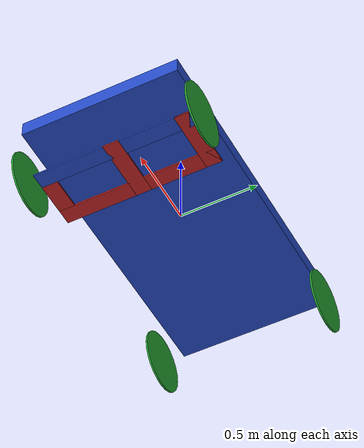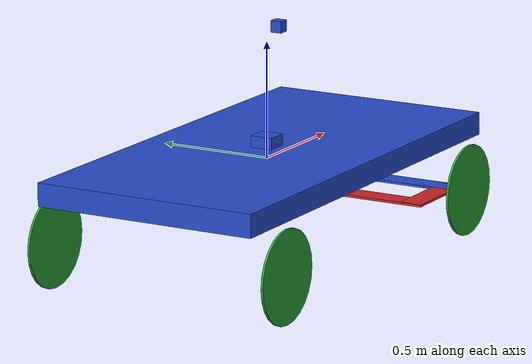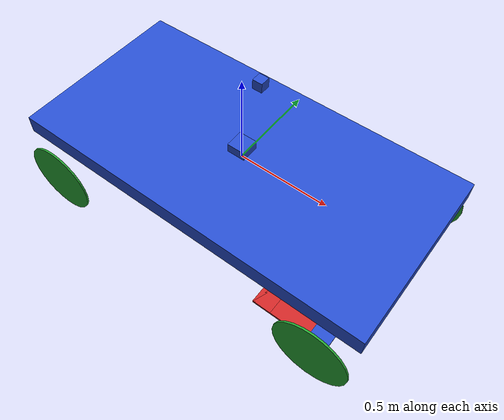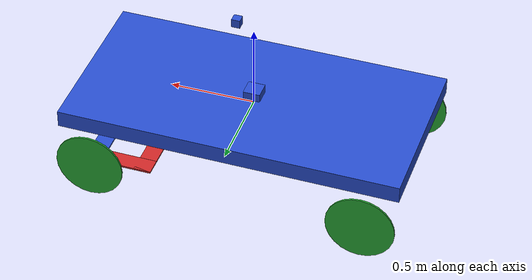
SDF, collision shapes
<sdf version='1.7'>
  <model name='Pedro'>
    <link name='base_link'>
      <inertial>
        <pose>0.015686 0 -0.004902 0 -0 0</pose>
        <mass>51</mass>
        <inertia>
          <ixx>2.06128</ixx>
          <ixy>0</ixy>
          <ixz>0.196078</ixz>
          <iyy>2.68873</iyy>
          <iyz>0</iyz>
          <izz>2.62745</izz>
        </inertia>
      </inertial>
      <collision name='base_link_collision'>
        <pose>0 0 0 0 -0 0</pose>
        <geometry>
          <box>
            <size>2 1 0.1</size>
          </box>
        </geometry>
        <surface>
          <contact>
            <ode/>
          </contact>
          <friction>
            <ode/>
          </friction>
        </surface>
      </collision>
      <collision name='base_link_fixed_joint_lump__camera_link_collision_1'>
        <pose>0.1 0 0.55 0 -0 0</pose>
        <geometry>
          <box>
            <size>0.05 0.05 0.05</size>
          </box>
        </geometry>
        <surface>
          <contact>
            <ode/>
          </contact>
          <friction>
            <ode/>
          </friction>
        </surface>
      </collision>
      <collision name='base_link_fixed_joint_lump__front_link_collision_2'>
        <pose>0.8 0 -0.25 0 -0 0</pose>
        <geometry>
          <box>
            <size>0.1 1 0.01</size>
          </box>
        </geometry>
        <surface>
          <contact>
            <ode/>
          </contact>
          <friction>
            <ode/>
          </friction>
        </surface>
      </collision>
      <collision name='base_link_fixed_joint_lump__hokuyo_link_collision_3'>
        <pose>0 0 0.05 0 -0 0</pose>
        <geometry>
          <box>
            <size>0.1 0.1 0.1</size>
          </box>
        </geometry>
        <surface>
          <contact>
            <ode/>
          </contact>
          <friction>
            <ode/>
          </friction>
        </surface>
      </collision>
      <visual name='base_link_visual'>
        <pose>0 0 0 0 -0 0</pose>
        <geometry>
          <box>
            <size>2 1 0.1</size>
          </box>
        </geometry>
        <material>
          <script>
            <name>Gazebo/Blue</name>
            <uri>file://media/materials/scripts/gazebo.material</uri>
          </script>
        </material>
      </visual>
      <visual name='base_link_fixed_joint_lump__camera_link_visual_1'>
        <pose>0.1 0 0.05 0 -0 0</pose>
        <geometry>
          <box>
            <size>0.05 0.05 0.05</size>
          </box>
        </geometry>
        <material>
          <script>
            <name>Gazebo/Red</name>
            <uri>file://media/materials/scripts/gazebo.material</uri>
          </script>
        </material>
      </visual>
      <visual name='base_link_fixed_joint_lump__front_link_visual_2'>
        <pose>0.8 0 -0.25 0 -0 0</pose>
        <geometry>
          <box>
            <size>0.1 1 0.01</size>
          </box>
        </geometry>
        <material>
          <script>
            <name>Gazebo/Red</name>
            <uri>file://media/materials/scripts/gazebo.material</uri>
          </script>
        </material>
      </visual>
      <visual name='base_link_fixed_joint_lump__hokuyo_link_visual_3'>
        <pose>0 0 0.05 0 -0 0</pose>
        <geometry>
          <mesh>
            <scale>1 1 1</scale>
            <uri>hokuyo.dae</uri>
          </mesh>
        </geometry>
        <material>
          <script>
            <name>Gazebo/Black</name>
            <uri>file://media/materials/scripts/gazebo.material</uri>
          </script>
        </material>
      </visual>
      <sensor name='camera' type='depth'>
        <visualize>1</visualize>
        <update_rate>10</update_rate>
        <camera>
          <horizontal_fov>1.089</horizontal_fov>
          <image>
            <format>B8G8R8</format>
            <width>640</width>
            <height>480</height>
          </image>
          <clip>
            <near>0.05</near>
            <far>8</far>
          </clip>
        </camera>
        <plugin name='camera_controller' filename='libgazebo_ros_camera.so'>
          <frame_name>camera_link_optical</frame_name>
          <min_depth>0.1</min_depth>
          <max_depth>100.0</max_depth>
        </plugin>
        <pose>0.1 0 0.05 0 -0 0</pose>
      </sensor>
      <sensor name='laser' type='gpu_ray'>
        <visualize>1</visualize>
        <update_rate>10</update_rate>
        <ray>
          <scan>
            <horizontal>
              <samples>360</samples>
              <resolution>1</resolution>
              <min_angle>-3.14</min_angle>
              <max_angle>3.14</max_angle>
            </horizontal>
          </scan>
          <range>
            <min>0.3</min>
            <max>12</max>
          </range>
        </ray>
        <always_on>1</always_on>
        <plugin name='laser_controller' filename='libgazebo_ros_ray_sensor.so'>
          <ros>
            <argument>~/out:=scan</argument>
          </ros>
          <output_type>sensor_msgs/LaserScan</output_type>
          <frame_name>laser_frame</frame_name>
        </plugin>
        <plugin name='pc2_gpu' filename='libgazebo_ros_ray_sensor.so'>
          <ros>
            <namespace>/gpu_ray</namespace>
            <remapping>~/out:=pointcloud2</remapping>
          </ros>
          <output_type>sensor_msgs/PointCloud2</output_type>
        </plugin>
        <plugin name='pc_gpu' filename='libgazebo_ros_ray_sensor.so'>
          <ros>
            <namespace>/gpu_ray</namespace>
            <remapping>~/out:=pointcloud</remapping>
          </ros>
          <output_type>sensor_msgs/PointCloud</output_type>
        </plugin>
        <plugin name='laserscan_gpu' filename='libgazebo_ros_ray_sensor.so'>
          <ros>
            <namespace>/gpu_ray</namespace>
            <remapping>~/out:=laserscan</remapping>
          </ros>
          <output_type>sensor_msgs/LaserScan</output_type>
        </plugin>
        <plugin name='range_gpu' filename='libgazebo_ros_ray_sensor.so'>
          <ros>
            <namespace>/gpu_ray</namespace>
            <remapping>~/out:=range</remapping>
          </ros>
          <output_type>sensor_msgs/Range</output_type>
        </plugin>
        <pose>0 0 0 0 -0 0</pose>
      </sensor>
    </link>
    <joint name='back_left_wheel_joint' type='revolute'>
      <pose relative_to='base_link'>-0.8 0.55 -0.25 0 -0 0</pose>
      <parent>base_link</parent>
      <child>back_left_wheel_link</child>
      <axis>
        <xyz>0 1 0</xyz>
        <limit>
          <lower>-1e+16</lower>
          <upper>1e+16</upper>
        </limit>
        <dynamics>
          <spring_reference>0</spring_reference>
          <spring_stiffness>0</spring_stiffness>
        </dynamics>
      </axis>
    </joint>
    <link name='back_left_wheel_link'>
      <pose relative_to='back_left_wheel_joint'>0 0 0 0 -0 0</pose>
      <inertial>
        <pose>0 0 0 0 -0 0</pose>
        <mass>1</mass>
        <inertia>
          <ixx>1</ixx>
          <ixy>0</ixy>
          <ixz>0</ixz>
          <iyy>1</iyy>
          <iyz>0</iyz>
          <izz>1</izz>
        </inertia>
      </inertial>
      <collision name='back_left_wheel_link_collision'>
        <pose>0 0 0 1.5708 -0 0</pose>
        <geometry>
          <cylinder>
            <length>0.01</length>
            <radius>0.2</radius>
          </cylinder>
        </geometry>
        <surface>
          <contact>
            <ode/>
          </contact>
          <friction>
            <ode/>
          </friction>
        </surface>
      </collision>
      <visual name='back_left_wheel_link_visual'>
        <pose>0 0 0 1.5708 -0 0</pose>
        <geometry>
          <cylinder>
            <length>0.01</length>
            <radius>0.2</radius>
          </cylinder>
        </geometry>
        <material>
          <script>
            <name>Gazebo/Green</name>
            <uri>file://media/materials/scripts/gazebo.material</uri>
          </script>
        </material>
      </visual>
    </link>
    <joint name='back_right_wheel_joint' type='revolute'>
      <pose relative_to='base_link'>-0.8 -0.55 -0.25 0 -0 0</pose>
      <parent>base_link</parent>
      <child>back_right_wheel_link</child>
      <axis>
        <xyz>0 1 0</xyz>
        <limit>
          <lower>-1e+16</lower>
          <upper>1e+16</upper>
        </limit>
        <dynamics>
          <spring_reference>0</spring_reference>
          <spring_stiffness>0</spring_stiffness>
        </dynamics>
      </axis>
    </joint>
    <link name='back_right_wheel_link'>
      <pose relative_to='back_right_wheel_joint'>0 0 0 0 -0 0</pose>
      <inertial>
        <pose>0 0 0 0 -0 0</pose>
        <mass>1</mass>
        <inertia>
          <ixx>1</ixx>
          <ixy>0</ixy>
          <ixz>0</ixz>
          <iyy>1</iyy>
          <iyz>0</iyz>
          <izz>1</izz>
        </inertia>
      </inertial>
      <collision name='back_right_wheel_link_collision'>
        <pose>0 0 0 1.5708 -0 0</pose>
        <geometry>
          <cylinder>
            <length>0.01</length>
            <radius>0.2</radius>
          </cylinder>
        </geometry>
        <surface>
          <contact>
            <ode/>
          </contact>
          <friction>
            <ode/>
          </friction>
        </surface>
      </collision>
      <visual name='back_right_wheel_link_visual'>
        <pose>0 0 0 1.5708 -0 0</pose>
        <geometry>
          <cylinder>
            <length>0.01</length>
            <radius>0.2</radius>
          </cylinder>
        </geometry>
        <material>
          <script>
            <name>Gazebo/Green</name>
            <uri>file://media/materials/scripts/gazebo.material</uri>
          </script>
        </material>
      </visual>
    </link>
    <joint name='front_left_bar_joint' type='revolute'>
      <pose relative_to='base_link'>0.8 0.45 -0.25 0 -0 0</pose>
      <parent>base_link</parent>
      <child>front_left_bar_link</child>
      <axis>
        <xyz>0 0 1</xyz>
        <limit>
          <lower>-0.5</lower>
          <upper>0.5</upper>
          <effort>100</effort>
          <velocity>10</velocity>
        </limit>
        <dynamics>
          <spring_reference>0</spring_reference>
          <spring_stiffness>0</spring_stiffness>
        </dynamics>
      </axis>
    </joint>
    <link name='front_left_bar_link'>
      <pose relative_to='front_left_bar_joint'>0 0 0 0 -0 0</pose>
      <inertial>
        <pose>0 0 0 0 -0 0</pose>
        <mass>1</mass>
        <inertia>
          <ixx>1</ixx>
          <ixy>0</ixy>
          <ixz>0</ixz>
          <iyy>1</iyy>
          <iyz>0</iyz>
          <izz>1</izz>
        </inertia>
      </inertial>
      <collision name='front_left_bar_link_collision'>
        <pose>-0.15 0 0 0 -0 0</pose>
        <geometry>
          <box>
            <size>0.4 0.1 0.01</size>
          </box>
        </geometry>
        <surface>
          <contact>
            <ode/>
          </contact>
          <friction>
            <ode/>
          </friction>
        </surface>
      </collision>
      <visual name='front_left_bar_link_visual'>
        <pose>-0.15 0 0 0 -0 0</pose>
        <geometry>
          <box>
            <size>0.4 0.1 0.01</size>
          </box>
        </geometry>
        <material>
          <script>
            <name>Gazebo/Red</name>
            <uri>file://media/materials/scripts/gazebo.material</uri>
          </script>
        </material>
      </visual>
    </link>
    <joint name='front_left_wheel_joint' type='revolute'>
      <pose relative_to='front_left_bar_link'>0 0.1 0 0 -0 0</pose>
      <parent>front_left_bar_link</parent>
      <child>front_left_wheel_link</child>
      <axis>
        <xyz>0 1 0</xyz>
        <limit>
          <lower>-1e+16</lower>
          <upper>1e+16</upper>
        </limit>
        <dynamics>
          <spring_reference>0</spring_reference>
          <spring_stiffness>0</spring_stiffness>
        </dynamics>
      </axis>
    </joint>
    <link name='front_left_wheel_link'>
      <pose relative_to='front_left_wheel_joint'>0 0 0 0 -0 0</pose>
      <inertial>
        <pose>0 0 0 0 -0 0</pose>
        <mass>1</mass>
        <inertia>
          <ixx>1</ixx>
          <ixy>0</ixy>
          <ixz>0</ixz>
          <iyy>1</iyy>
          <iyz>0</iyz>
          <izz>1</izz>
        </inertia>
      </inertial>
      <collision name='front_left_wheel_link_collision'>
        <pose>0 0 0 1.5708 -0 0</pose>
        <geometry>
          <cylinder>
            <length>0.01</length>
            <radius>0.2</radius>
          </cylinder>
        </geometry>
        <surface>
          <contact>
            <ode/>
          </contact>
          <friction>
            <ode/>
          </friction>
        </surface>
      </collision>
      <visual name='front_left_wheel_link_visual'>
        <pose>0 0 0 1.5708 -0 0</pose>
        <geometry>
          <cylinder>
            <length>0.01</length>
            <radius>0.2</radius>
          </cylinder>
        </geometry>
        <material>
          <script>
            <name>Gazebo/Green</name>
            <uri>file://media/materials/scripts/gazebo.material</uri>
          </script>
        </material>
      </visual>
    </link>
    <joint name='front_right_bar_joint' type='revolute'>
      <pose relative_to='base_link'>0.8 -0.45 -0.25 0 -0 0</pose>
      <parent>base_link</parent>
      <child>front_right_bar_link</child>
      <axis>
        <xyz>0 0 1</xyz>
        <limit>
          <lower>-0.5</lower>
          <upper>0.5</upper>
          <effort>100</effort>
          <velocity>10</velocity>
        </limit>
        <dynamics>
          <spring_reference>0</spring_reference>
          <spring_stiffness>0</spring_stiffness>
        </dynamics>
      </axis>
    </joint>
    <link name='front_right_bar_link'>
      <pose relative_to='front_right_bar_joint'>0 0 0 0 -0 0</pose>
      <inertial>
        <pose>0 0 0 0 -0 0</pose>
        <mass>1</mass>
        <inertia>
          <ixx>1</ixx>
          <ixy>0</ixy>
          <ixz>0</ixz>
          <iyy>1</iyy>
          <iyz>0</iyz>
          <izz>1</izz>
        </inertia>
      </inertial>
      <collision name='front_right_bar_link_collision'>
        <pose>-0.15 0 0 0 -0 0</pose>
        <geometry>
          <box>
            <size>0.4 0.1 0.01</size>
          </box>
        </geometry>
        <surface>
          <contact>
            <ode/>
          </contact>
          <friction>
            <ode/>
          </friction>
        </surface>
      </collision>
      <visual name='front_right_bar_link_visual'>
        <pose>-0.15 0 0 0 -0 0</pose>
        <geometry>
          <box>
            <size>0.4 0.1 0.01</size>
          </box>
        </geometry>
        <material>
          <script>
            <name>Gazebo/Red</name>
            <uri>file://media/materials/scripts/gazebo.material</uri>
          </script>
        </material>
      </visual>
    </link>
    <joint name='front_right_wheel_joint' type='revolute'>
      <pose relative_to='front_right_bar_link'>0 -0.1 0 0 -0 0</pose>
      <parent>front_right_bar_link</parent>
      <child>front_right_wheel_link</child>
      <axis>
        <xyz>0 1 0</xyz>
        <limit>
          <lower>-1e+16</lower>
          <upper>1e+16</upper>
        </limit>
        <dynamics>
          <spring_reference>0</spring_reference>
          <spring_stiffness>0</spring_stiffness>
        </dynamics>
      </axis>
    </joint>
    <link name='front_right_wheel_link'>
      <pose relative_to='front_right_wheel_joint'>0 0 0 0 -0 0</pose>
      <inertial>
        <pose>0 0 0 0 -0 0</pose>
        <mass>1</mass>
        <inertia>
          <ixx>1</ixx>
          <ixy>0</ixy>
          <ixz>0</ixz>
          <iyy>1</iyy>
          <iyz>0</iyz>
          <izz>1</izz>
        </inertia>
      </inertial>
      <collision name='front_right_wheel_link_collision'>
        <pose>0 0 0 1.5708 -0 0</pose>
        <geometry>
          <cylinder>
            <length>0.01</length>
            <radius>0.2</radius>
          </cylinder>
        </geometry>
        <surface>
          <contact>
            <ode/>
          </contact>
          <friction>
            <ode/>
          </friction>
        </surface>
      </collision>
      <visual name='front_right_wheel_link_visual'>
        <pose>0 0 0 1.5708 -0 0</pose>
        <geometry>
          <cylinder>
            <length>0.01</length>
            <radius>0.2</radius>
          </cylinder>
        </geometry>
        <material>
          <script>
            <name>Gazebo/Green</name>
            <uri>file://media/materials/scripts/gazebo.material</uri>
          </script>
        </material>
      </visual>
      <gravity>1</gravity>
    </link>
    <joint name='steer_joint' type='revolute'>
      <pose relative_to='base_link'>0.8 0 -0.25 0 -0 0</pose>
      <parent>base_link</parent>
      <child>steer_link</child>
      <axis>
        <xyz>0 0 1</xyz>
        <limit>
          <lower>-0.5</lower>
          <upper>0.5</upper>
          <effort>100</effort>
          <velocity>10</velocity>
        </limit>
        <dynamics>
          <spring_reference>0</spring_reference>
          <spring_stiffness>0</spring_stiffness>
        </dynamics>
      </axis>
    </joint>
    <link name='steer_link'>
      <pose relative_to='steer_joint'>0 0 0 0 -0 0</pose>
      <inertial>
        <pose>0 0 0 0 -0 0</pose>
        <mass>1</mass>
        <inertia>
          <ixx>1</ixx>
          <ixy>0</ixy>
          <ixz>0</ixz>
          <iyy>1</iyy>
          <iyz>0</iyz>
          <izz>1</izz>
        </inertia>
      </inertial>
      <collision name='steer_link_collision'>
        <pose>-0.15 0 0 0 -0 0</pose>
        <geometry>
          <box>
            <size>0.4 0.1 0.01</size>
          </box>
        </geometry>
        <surface>
          <contact>
            <ode/>
          </contact>
          <friction>
            <ode/>
          </friction>
        </surface>
      </collision>
      <visual name='steer_link_visual'>
        <pose>-0.15 0 0 0 -0 0</pose>
        <geometry>
          <box>
            <size>0.4 0.1 0.01</size>
          </box>
        </geometry>
        <material>
          <script>
            <name>Gazebo/Red</name>
            <uri>file://media/materials/scripts/gazebo.material</uri>
          </script>
        </material>
      </visual>
    </link>
    <joint name='ackermann_joint' type='revolute'>
      <pose relative_to='steer_link'>-0.3 0 0 0 -0 0</pose>
      <parent>steer_link</parent>
      <child>ackermann_bar_link</child>
      <axis>
        <xyz>0 0 1</xyz>
        <limit>
          <lower>-0.5</lower>
          <upper>0.5</upper>
          <effort>100</effort>
          <velocity>10</velocity>
        </limit>
        <dynamics>
          <spring_reference>0</spring_reference>
          <spring_stiffness>0</spring_stiffness>
        </dynamics>
      </axis>
    </joint>
    <link name='ackermann_bar_link'>
      <pose relative_to='ackermann_joint'>0 0 0 0 -0 0</pose>
      <inertial>
        <pose>0 0 0 0 -0 0</pose>
        <mass>1</mass>
        <inertia>
          <ixx>1</ixx>
          <ixy>0</ixy>
          <ixz>0</ixz>
          <iyy>1</iyy>
          <iyz>0</iyz>
          <izz>1</izz>
        </inertia>
      </inertial>
      <collision name='ackermann_bar_link_collision'>
        <pose>0 0 0 0 -0 0</pose>
        <geometry>
          <box>
            <size>0.1 1 0.01</size>
          </box>
        </geometry>
        <surface>
          <contact>
            <ode/>
          </contact>
          <friction>
            <ode/>
          </friction>
        </surface>
      </collision>
      <visual name='ackermann_bar_link_visual'>
        <pose>0 0 0 0 -0 0</pose>
        <geometry>
          <box>
            <size>0.1 1 0.01</size>
          </box>
        </geometry>
        <material>
          <script>
            <name>Gazebo/Red</name>
            <uri>file://media/materials/scripts/gazebo.material</uri>
          </script>
        </material>
      </visual>
    </link>
    <joint name='front_left_bar_joint' type='revolute'>
      <pose relative_to='base_link'>0.8 0.45 -0.25 0 -0 0</pose>
      <parent>base_link</parent>
      <child>front_left_bar_link</child>
      <axis>
        <xyz>0 0 1</xyz>
        <limit>
          <lower>-0.5</lower>
          <upper>0.5</upper>
          <effort>100</effort>
          <velocity>10</velocity>
        </limit>
        <dynamics>
          <spring_reference>0</spring_reference>
          <spring_stiffness>0</spring_stiffness>
        </dynamics>
      </axis>
    </joint>
    <link name='front_left_bar_link'>
      <pose relative_to='front_left_bar_joint'>0 0 0 0 -0 0</pose>
      <inertial>
        <pose>0 0 0 0 -0 0</pose>
        <mass>1</mass>
        <inertia>
          <ixx>1</ixx>
          <ixy>0</ixy>
          <ixz>0</ixz>
          <iyy>1</iyy>
          <iyz>0</iyz>
          <izz>1</izz>
        </inertia>
      </inertial>
      <collision name='front_left_bar_link_collision'>
        <pose>-0.15 0 0 0 -0 0</pose>
        <geometry>
          <box>
            <size>0.4 0.1 0.01</size>
          </box>
        </geometry>
        <surface>
          <contact>
            <ode/>
          </contact>
          <friction>
            <ode/>
          </friction>
        </surface>
      </collision>
      <visual name='front_left_bar_link_visual'>
        <pose>-0.15 0 0 0 -0 0</pose>
        <geometry>
          <box>
            <size>0.4 0.1 0.01</size>
          </box>
        </geometry>
        <material>
          <script>
            <name>Gazebo/Red</name>
            <uri>file://media/materials/scripts/gazebo.material</uri>
          </script>
        </material>
      </visual>
    </link>
    <joint name='front_left_wheel_joint' type='revolute'>
      <pose relative_to='front_left_bar_link'>0 0.1 0 0 -0 0</pose>
      <parent>front_left_bar_link</parent>
      <child>front_left_wheel_link</child>
      <axis>
        <xyz>0 1 0</xyz>
        <limit>
          <lower>-1e+16</lower>
          <upper>1e+16</upper>
        </limit>
        <dynamics>
          <spring_reference>0</spring_reference>
          <spring_stiffness>0</spring_stiffness>
        </dynamics>
      </axis>
    </joint>
    <link name='front_left_wheel_link'>
      <pose relative_to='front_left_wheel_joint'>0 0 0 0 -0 0</pose>
      <inertial>
        <pose>0 0 0 0 -0 0</pose>
        <mass>1</mass>
        <inertia>
          <ixx>1</ixx>
          <ixy>0</ixy>
          <ixz>0</ixz>
          <iyy>1</iyy>
          <iyz>0</iyz>
          <izz>1</izz>
        </inertia>
      </inertial>
      <collision name='front_left_wheel_link_collision'>
        <pose>0 0 0 1.5708 -0 0</pose>
        <geometry>
          <cylinder>
            <length>0.01</length>
            <radius>0.2</radius>
          </cylinder>
        </geometry>
        <surface>
          <contact>
            <ode/>
          </contact>
          <friction>
            <ode/>
          </friction>
        </surface>
      </collision>
      <visual name='front_left_wheel_link_visual'>
        <pose>0 0 0 1.5708 -0 0</pose>
        <geometry>
          <cylinder>
            <length>0.01</length>
            <radius>0.2</radius>
          </cylinder>
        </geometry>
        <material>
          <script>
            <name>Gazebo/Green</name>
            <uri>file://media/materials/scripts/gazebo.material</uri>
          </script>
        </material>
      </visual>
    </link>
    <joint name='front_right_bar_joint' type='revolute'>
      <pose relative_to='base_link'>0.8 -0.45 -0.25 0 -0 0</pose>
      <parent>base_link</parent>
      <child>front_right_bar_link</child>
      <axis>
        <xyz>0 0 1</xyz>
        <limit>
          <lower>-0.5</lower>
          <upper>0.5</upper>
          <effort>100</effort>
          <velocity>10</velocity>
        </limit>
        <dynamics>
          <spring_reference>0</spring_reference>
          <spring_stiffness>0</spring_stiffness>
        </dynamics>
      </axis>
    </joint>
    <link name='front_right_bar_link'>
      <pose relative_to='front_right_bar_joint'>0 0 0 0 -0 0</pose>
      <inertial>
        <pose>0 0 0 0 -0 0</pose>
        <mass>1</mass>
        <inertia>
          <ixx>1</ixx>
          <ixy>0</ixy>
          <ixz>0</ixz>
          <iyy>1</iyy>
          <iyz>0</iyz>
          <izz>1</izz>
        </inertia>
      </inertial>
      <collision name='front_right_bar_link_collision'>
        <pose>-0.15 0 0 0 -0 0</pose>
        <geometry>
          <box>
            <size>0.4 0.1 0.01</size>
          </box>
        </geometry>
        <surface>
          <contact>
            <ode/>
          </contact>
          <friction>
            <ode/>
          </friction>
        </surface>
      </collision>
      <visual name='front_right_bar_link_visual'>
        <pose>-0.15 0 0 0 -0 0</pose>
        <geometry>
          <box>
            <size>0.4 0.1 0.01</size>
          </box>
        </geometry>
        <material>
          <script>
            <name>Gazebo/Red</name>
            <uri>file://media/materials/scripts/gazebo.material</uri>
          </script>
        </material>
      </visual>
    </link>
    <joint name='front_right_wheel_joint' type='revolute'>
      <pose relative_to='front_right_bar_link'>0 -0.1 0 0 -0 0</pose>
      <parent>front_right_bar_link</parent>
      <child>front_right_wheel_link</child>
      <axis>
        <xyz>0 1 0</xyz>
        <limit>
          <lower>-1e+16</lower>
          <upper>1e+16</upper>
        </limit>
        <dynamics>
          <spring_reference>0</spring_reference>
          <spring_stiffness>0</spring_stiffness>
        </dynamics>
      </axis>
    </joint>
    <link name='front_right_wheel_link'>
      <pose relative_to='front_right_wheel_joint'>0 0 0 0 -0 0</pose>
      <inertial>
        <pose>0 0 0 0 -0 0</pose>
        <mass>1</mass>
        <inertia>
          <ixx>1</ixx>
          <ixy>0</ixy>
          <ixz>0</ixz>
          <iyy>1</iyy>
          <iyz>0</iyz>
          <izz>1</izz>
        </inertia>
      </inertial>
      <collision name='front_right_wheel_link_collision'>
        <pose>0 0 0 1.5708 -0 0</pose>
        <geometry>
          <cylinder>
            <length>0.01</length>
            <radius>0.2</radius>
          </cylinder>
        </geometry>
        <surface>
          <contact>
            <ode/>
          </contact>
          <friction>
            <ode/>
          </friction>
        </surface>
      </collision>
      <visual name='front_right_wheel_link_visual'>
        <pose>0 0 0 1.5708 -0 0</pose>
        <geometry>
          <cylinder>
            <length>0.01</length>
            <radius>0.2</radius>
          </cylinder>
        </geometry>
        <material>
          <script>
            <name>Gazebo/Green</name>
            <uri>file://media/materials/scripts/gazebo.material</uri>
          </script>
        </material>
      </visual>
      <gravity>1</gravity>
    </link>
    <plugin name='gazebo_ros_control' filename='libgazebo_ros_control.so'>
      <robotNamespace>/pedro</robotNamespace>
    </plugin>
    <static>0</static>
    <plugin name='ackermann_drive' filename='libgazebo_ros_ackermann_drive.so'>
      <ros>
        <namespace>pedro</namespace>
        <remapping>cmd_vel:=cmd_vel</remapping>
        <remapping>odom:=odom</remapping>
        <remapping>distance:=distance</remapping>
      </ros>
      <updateRate>100.0</updateRate>
      <front_left_joint>front_left_wheel_joint</front_left_joint>
      <front_right_joint>front_right_wheel_joint</front_right_joint>
      <rear_left_joint>back_left_wheel_joint</rear_left_joint>
      <rear_right_joint>back_right_wheel_joint</rear_right_joint>
      <left_steering_joint>front_left_bar_joint</left_steering_joint>
      <right_steering_joint>front_right_bar_joint</right_steering_joint>
      <steering_wheel_joint>steer_link</steering_wheel_joint>
      <max_steer>0.6458</max_steer>
      <max_steering_angle>7.85</max_steering_angle>
      <max_speed>20</max_speed>
      <left_steering_pid_gain>1500 0 1</left_steering_pid_gain>
      <left_steering_i_range>0 0</left_steering_i_range>
      <right_steering_pid_gain>1500 0 1</right_steering_pid_gain>
      <right_steering_i_range>0 0</right_steering_i_range>
      <linear_velocity_pid_gain>1000 0 1</linear_velocity_pid_gain>
      <linear_velocity_i_range>0 0</linear_velocity_i_range>
      <publish_odom>1</publish_odom>
      <publish_odom_tf>1</publish_odom_tf>
      <publish_wheel_tf>1</publish_wheel_tf>
      <publish_distance>1</publish_distance>
      <odometry_frame>odom</odometry_frame>
    </plugin>
  </model>
</sdf>
